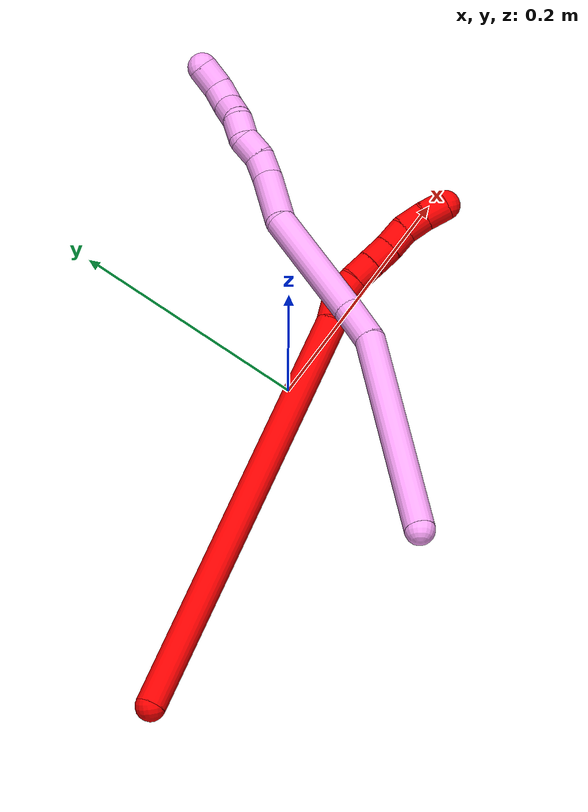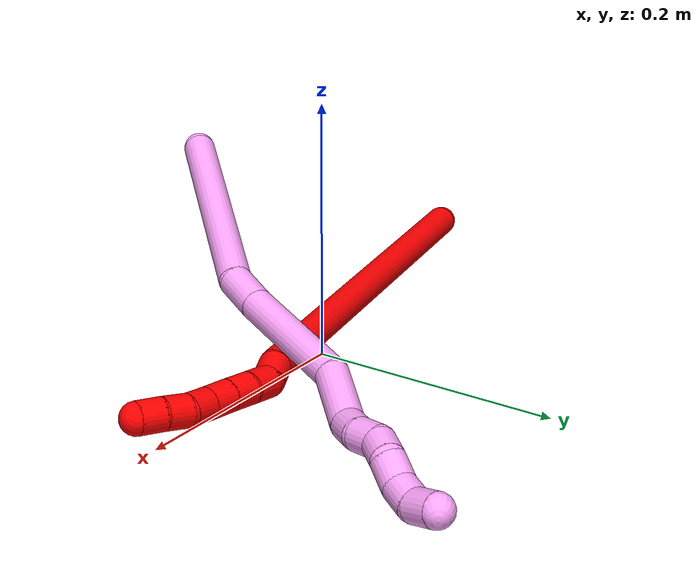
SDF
<sdf version="1.7">
 <world name="default">
  <model name="2">
   <static>0</static>
   <link name="2">
    <collision name="collision-cylinder-e_1_1_4">
     <pose>0.115353 0.046411 -0.127434 -2.79233 0.704811 -2.24697</pose>
     <geometry><cylinder><radius>0.0125</radius><length>0.356088</length></cylinder></geometry>
     <surface>
      <friction><ode><mu>1.16</mu><mu2>1.16</mu2><slip1>0</slip1><slip2>0</slip2></ode></friction>
      <contact><ode><kp>1e+06</kp><kd>1</kd><max_vel>0</max_vel><min_depth>0.001</min_depth></ode></contact>
     </surface>
    </collision>
    <visual name="visual-cylinder-e_1_1_4">
     <pose>0.115353 0.046411 -0.127434 -2.79233 0.704811 -2.24697</pose>
     <geometry><cylinder><radius>0.0125</radius><length>0.356088</length></cylinder></geometry>
     <material><ambient>1 0 0 1</ambient></material>
    </visual>
    <collision name="collision-cylinder-e_2_4_5">
     <pose>0.238565 0.092941 -0.262426 -3.12573 0.804891 -3.10433</pose>
     <geometry><cylinder><radius>0.0125</radius><length>0.021809</length></cylinder></geometry>
     <surface>
      <friction><ode><mu>1.16</mu><mu2>1.16</mu2><slip1>0</slip1><slip2>0</slip2></ode></friction>
      <contact><ode><kp>1e+06</kp><kd>1</kd><max_vel>0</max_vel><min_depth>0.001</min_depth></ode></contact>
     </surface>
    </collision>
    <visual name="visual-cylinder-e_2_4_5">
     <pose>0.238565 0.092941 -0.262426 -3.12573 0.804891 -3.10433</pose>
     <geometry><cylinder><radius>0.0125</radius><length>0.021809</length></cylinder></geometry>
     <material><ambient>1 0 0 1</ambient></material>
    </visual>
    <collision name="collision-cylinder-e_3_5_6">
     <pose>0.252915 0.098628 -0.27688 -2.46242 0.632113 -1.49366</pose>
     <geometry><cylinder><radius>0.0125</radius><length>0.021972</length></cylinder></geometry>
     <surface>
      <friction><ode><mu>1.16</mu><mu2>1.16</mu2><slip1>0</slip1><slip2>0</slip2></ode></friction>
      <contact><ode><kp>1e+06</kp><kd>1</kd><max_vel>0</max_vel><min_depth>0.001</min_depth></ode></contact>
     </surface>
    </collision>
    <visual name="visual-cylinder-e_3_5_6">
     <pose>0.252915 0.098628 -0.27688 -2.46242 0.632113 -1.49366</pose>
     <geometry><cylinder><radius>0.0125</radius><length>0.021972</length></cylinder></geometry>
     <material><ambient>1 0 0 1</ambient></material>
    </visual>
    <collision name="collision-cylinder-e_4_6_7">
     <pose>0.265882 0.110006 -0.288796 -2.28333 0.700676 -1.34776</pose>
     <geometry><cylinder><radius>0.0125</radius><length>0.020088</length></cylinder></geometry>
     <surface>
      <friction><ode><mu>1.16</mu><mu2>1.16</mu2><slip1>0</slip1><slip2>0</slip2></ode></friction>
      <contact><ode><kp>1e+06</kp><kd>1</kd><max_vel>0</max_vel><min_depth>0.001</min_depth></ode></contact>
     </surface>
    </collision>
    <visual name="visual-cylinder-e_4_6_7">
     <pose>0.265882 0.110006 -0.288796 -2.28333 0.700676 -1.34776</pose>
     <geometry><cylinder><radius>0.0125</radius><length>0.020088</length></cylinder></geometry>
     <material><ambient>1 0 0 1</ambient></material>
    </visual>
    <collision name="collision-cylinder-e_5_7_8">
     <pose>0.278965 0.12144 -0.298786 -2.2946 0.721708 -1.394</pose>
     <geometry><cylinder><radius>0.0125</radius><length>0.02</length></cylinder></geometry>
     <surface>
      <friction><ode><mu>1.16</mu><mu2>1.16</mu2><slip1>0</slip1><slip2>0</slip2></ode></friction>
      <contact><ode><kp>1e+06</kp><kd>1</kd><max_vel>0</max_vel><min_depth>0.001</min_depth></ode></contact>
     </surface>
    </collision>
    <visual name="visual-cylinder-e_5_7_8">
     <pose>0.278965 0.12144 -0.298786 -2.2946 0.721708 -1.394</pose>
     <geometry><cylinder><radius>0.0125</radius><length>0.02</length></cylinder></geometry>
     <material><ambient>1 0 0 1</ambient></material>
    </visual>
    <collision name="collision-cylinder-e_6_8_9">
     <pose>0.291556 0.132373 -0.309765 -2.41795 0.641329 -1.44052</pose>
     <geometry><cylinder><radius>0.0125</radius><length>0.020008</length></cylinder></geometry>
     <surface>
      <friction><ode><mu>1.16</mu><mu2>1.16</mu2><slip1>0</slip1><slip2>0</slip2></ode></friction>
      <contact><ode><kp>1e+06</kp><kd>1</kd><max_vel>0</max_vel><min_depth>0.001</min_depth></ode></contact>
     </surface>
    </collision>
    <visual name="visual-cylinder-e_6_8_9">
     <pose>0.291556 0.132373 -0.309765 -2.41795 0.641329 -1.44052</pose>
     <geometry><cylinder><radius>0.0125</radius><length>0.020008</length></cylinder></geometry>
     <material><ambient>1 0 0 1</ambient></material>
    </visual>
    <collision name="collision-cylinder-e_7_9_10">
     <pose>0.302867 0.145053 -0.319931 -2.08435 0.561614 -0.917397</pose>
     <geometry><cylinder><radius>0.0125</radius><length>0.020002</length></cylinder></geometry>
     <surface>
      <friction><ode><mu>1.16</mu><mu2>1.16</mu2><slip1>0</slip1><slip2>0</slip2></ode></friction>
      <contact><ode><kp>1e+06</kp><kd>1</kd><max_vel>0</max_vel><min_depth>0.001</min_depth></ode></contact>
     </surface>
    </collision>
    <visual name="visual-cylinder-e_7_9_10">
     <pose>0.302867 0.145053 -0.319931 -2.08435 0.561614 -0.917397</pose>
     <geometry><cylinder><radius>0.0125</radius><length>0.020002</length></cylinder></geometry>
     <material><ambient>1 0 0 1</ambient></material>
    </visual>
    <collision name="collision-cylinder-e_8_10_2">
     <pose>0.313961 0.159994 -0.327219 -1.96296 0.613619 -0.885051</pose>
     <geometry><cylinder><radius>0.0125</radius><length>0.020034</length></cylinder></geometry>
     <surface>
      <friction><ode><mu>1.16</mu><mu2>1.16</mu2><slip1>0</slip1><slip2>0</slip2></ode></friction>
      <contact><ode><kp>1e+06</kp><kd>1</kd><max_vel>0</max_vel><min_depth>0.001</min_depth></ode></contact>
     </surface>
    </collision>
    <visual name="visual-cylinder-e_8_10_2">
     <pose>0.313961 0.159994 -0.327219 -1.96296 0.613619 -0.885051</pose>
     <geometry><cylinder><radius>0.0125</radius><length>0.020034</length></cylinder></geometry>
     <material><ambient>1 0 0 1</ambient></material>
    </visual>
    <collision name="collision-sphere-2">
     <pose>0.319729 0.167562 -0.330349 0 -0 0</pose>
     <geometry><sphere><radius>0.0125</radius></sphere></geometry>
     <surface>
      <friction><ode><mu>1.16</mu><mu2>1.16</mu2><slip1>0</slip1><slip2>0</slip2></ode></friction>
      <contact><ode><kp>1e+06</kp><kd>1</kd><max_vel>0</max_vel><min_depth>0.001</min_depth></ode></contact>
     </surface>
    </collision>
    <visual name="visual-sphere-2">
     <pose>0.319729 0.167562 -0.330349 0 -0 0</pose>
     <geometry><sphere><radius>0.0125</radius></sphere></geometry>
     <material><ambient>1 0 0 1</ambient></material>
    </visual>
    <collision name="collision-sphere-10">
     <pose>0.308193 0.152426 -0.324089 0 -0 0</pose>
     <geometry><sphere><radius>0.0125</radius></sphere></geometry>
     <surface>
      <friction><ode><mu>1.16</mu><mu2>1.16</mu2><slip1>0</slip1><slip2>0</slip2></ode></friction>
      <contact><ode><kp>1e+06</kp><kd>1</kd><max_vel>0</max_vel><min_depth>0.001</min_depth></ode></contact>
     </surface>
    </collision>
    <visual name="visual-sphere-10">
     <pose>0.308193 0.152426 -0.324089 0 -0 0</pose>
     <geometry><sphere><radius>0.0125</radius></sphere></geometry>
     <material><ambient>1 0 0 1</ambient></material>
    </visual>
    <collision name="collision-sphere-9">
     <pose>0.297541 0.13768 -0.315772 0 -0 0</pose>
     <geometry><sphere><radius>0.0125</radius></sphere></geometry>
     <surface>
      <friction><ode><mu>1.16</mu><mu2>1.16</mu2><slip1>0</slip1><slip2>0</slip2></ode></friction>
      <contact><ode><kp>1e+06</kp><kd>1</kd><max_vel>0</max_vel><min_depth>0.001</min_depth></ode></contact>
     </surface>
    </collision>
    <visual name="visual-sphere-9">
     <pose>0.297541 0.13768 -0.315772 0 -0 0</pose>
     <geometry><sphere><radius>0.0125</radius></sphere></geometry>
     <material><ambient>1 0 0 1</ambient></material>
    </visual>
    <collision name="collision-sphere-4">
     <pose>0.230706 0.092821 -0.254868 0 -0 0</pose>
     <geometry><sphere><radius>0.0125</radius></sphere></geometry>
     <surface>
      <friction><ode><mu>1.16</mu><mu2>1.16</mu2><slip1>0</slip1><slip2>0</slip2></ode></friction>
      <contact><ode><kp>1e+06</kp><kd>1</kd><max_vel>0</max_vel><min_depth>0.001</min_depth></ode></contact>
     </surface>
    </collision>
    <visual name="visual-sphere-4">
     <pose>0.230706 0.092821 -0.254868 0 -0 0</pose>
     <geometry><sphere><radius>0.0125</radius></sphere></geometry>
     <material><ambient>1 0 0 1</ambient></material>
    </visual>
    <collision name="collision-sphere-1">
     <geometry><sphere><radius>0.0125</radius></sphere></geometry>
     <surface>
      <friction><ode><mu>1.16</mu><mu2>1.16</mu2><slip1>0</slip1><slip2>0</slip2></ode></friction>
      <contact><ode><kp>1e+06</kp><kd>1</kd><max_vel>0</max_vel><min_depth>0.001</min_depth></ode></contact>
     </surface>
    </collision>
    <visual name="visual-sphere-1">
     <geometry><sphere><radius>0.0125</radius></sphere></geometry>
     <material><ambient>1 0 0 1</ambient></material>
    </visual>
    <collision name="collision-sphere-8">
     <pose>0.285572 0.127065 -0.303758 0 -0 0</pose>
     <geometry><sphere><radius>0.0125</radius></sphere></geometry>
     <surface>
      <friction><ode><mu>1.16</mu><mu2>1.16</mu2><slip1>0</slip1><slip2>0</slip2></ode></friction>
      <contact><ode><kp>1e+06</kp><kd>1</kd><max_vel>0</max_vel><min_depth>0.001</min_depth></ode></contact>
     </surface>
    </collision>
    <visual name="visual-sphere-8">
     <pose>0.285572 0.127065 -0.303758 0 -0 0</pose>
     <geometry><sphere><radius>0.0125</radius></sphere></geometry>
     <material><ambient>1 0 0 1</ambient></material>
    </visual>
    <collision name="collision-sphere-5">
     <pose>0.246424 0.093061 -0.269983 0 -0 0</pose>
     <geometry><sphere><radius>0.0125</radius></sphere></geometry>
     <surface>
      <friction><ode><mu>1.16</mu><mu2>1.16</mu2><slip1>0</slip1><slip2>0</slip2></ode></friction>
      <contact><ode><kp>1e+06</kp><kd>1</kd><max_vel>0</max_vel><min_depth>0.001</min_depth></ode></contact>
     </surface>
    </collision>
    <visual name="visual-sphere-5">
     <pose>0.246424 0.093061 -0.269983 0 -0 0</pose>
     <geometry><sphere><radius>0.0125</radius></sphere></geometry>
     <material><ambient>1 0 0 1</ambient></material>
    </visual>
    <collision name="collision-sphere-6">
     <pose>0.259407 0.104196 -0.283776 0 -0 0</pose>
     <geometry><sphere><radius>0.0125</radius></sphere></geometry>
     <surface>
      <friction><ode><mu>1.16</mu><mu2>1.16</mu2><slip1>0</slip1><slip2>0</slip2></ode></friction>
      <contact><ode><kp>1e+06</kp><kd>1</kd><max_vel>0</max_vel><min_depth>0.001</min_depth></ode></contact>
     </surface>
    </collision>
    <visual name="visual-sphere-6">
     <pose>0.259407 0.104196 -0.283776 0 -0 0</pose>
     <geometry><sphere><radius>0.0125</radius></sphere></geometry>
     <material><ambient>1 0 0 1</ambient></material>
    </visual>
    <collision name="collision-sphere-7">
     <pose>0.272358 0.115816 -0.293815 0 -0 0</pose>
     <geometry><sphere><radius>0.0125</radius></sphere></geometry>
     <surface>
      <friction><ode><mu>1.16</mu><mu2>1.16</mu2><slip1>0</slip1><slip2>0</slip2></ode></friction>
      <contact><ode><kp>1e+06</kp><kd>1</kd><max_vel>0</max_vel><min_depth>0.001</min_depth></ode></contact>
     </surface>
    </collision>
    <visual name="visual-sphere-7">
     <pose>0.272358 0.115816 -0.293815 0 -0 0</pose>
     <geometry><sphere><radius>0.0125</radius></sphere></geometry>
     <material><ambient>1 0 0 1</ambient></material>
    </visual>
    <inertial>
     <pose>0.161874 0.068228 -0.176228 0 -0 0</pose>
     <mass>0.5</mass>
     <inertia>
      <ixx>-0.004025</ixx>
      <ixy>0</ixy>
      <ixz>0</ixz>
      <iyy>0.000641</iyy>
      <iyz>0</iyz>
      <izz>-0.003469</izz>
     </inertia>
    </inertial>
   </link>
   <pose>-0.284846 -0.068002 0.011499 2.46892 0.829462 -0.045336</pose>
  </model>
  <model name="4">
   <static>0</static>
   <link name="4">
    <collision name="collision-cylinder-e_1_1_4">
     <pose>0.008501 0.02004 -0.091795 -2.92665 0.090231 -0.79264</pose>
     <geometry><cylinder><radius>0.0125</radius><length>0.188682</length></cylinder></geometry>
     <surface>
      <friction><ode><mu>1.16</mu><mu2>1.16</mu2><slip1>0</slip1><slip2>0</slip2></ode></friction>
      <contact><ode><kp>1e+06</kp><kd>1</kd><max_vel>0</max_vel><min_depth>0.001</min_depth></ode></contact>
     </surface>
    </collision>
    <visual name="visual-cylinder-e_1_1_4">
     <pose>0.008501 0.02004 -0.091795 -2.92665 0.090231 -0.79264</pose>
     <geometry><cylinder><radius>0.0125</radius><length>0.188682</length></cylinder></geometry>
     <material><ambient>1 0.65098 0.996078 1</ambient></material>
    </visual>
    <collision name="collision-cylinder-e_2_4_5">
     <pose>0.023395 0.045747 -0.198665 -2.78203 0.377895 -1.62164</pose>
     <geometry><cylinder><radius>0.0125</radius><length>0.034656</length></cylinder></geometry>
     <surface>
      <friction><ode><mu>1.16</mu><mu2>1.16</mu2><slip1>0</slip1><slip2>0</slip2></ode></friction>
      <contact><ode><kp>1e+06</kp><kd>1</kd><max_vel>0</max_vel><min_depth>0.001</min_depth></ode></contact>
     </surface>
    </collision>
    <visual name="visual-cylinder-e_2_4_5">
     <pose>0.023395 0.045747 -0.198665 -2.78203 0.377895 -1.62164</pose>
     <geometry><cylinder><radius>0.0125</radius><length>0.034656</length></cylinder></geometry>
     <material><ambient>1 0.65098 0.996078 1</ambient></material>
    </visual>
    <collision name="collision-cylinder-e_3_5_6">
     <pose>0.051781 0.0667 -0.257427 -2.805 0.443593 -1.8502</pose>
     <geometry><cylinder><radius>0.0125</radius><length>0.102486</length></cylinder></geometry>
     <surface>
      <friction><ode><mu>1.16</mu><mu2>1.16</mu2><slip1>0</slip1><slip2>0</slip2></ode></friction>
      <contact><ode><kp>1e+06</kp><kd>1</kd><max_vel>0</max_vel><min_depth>0.001</min_depth></ode></contact>
     </surface>
    </collision>
    <visual name="visual-cylinder-e_3_5_6">
     <pose>0.051781 0.0667 -0.257427 -2.805 0.443593 -1.8502</pose>
     <geometry><cylinder><radius>0.0125</radius><length>0.102486</length></cylinder></geometry>
     <material><ambient>1 0.65098 0.996078 1</ambient></material>
    </visual>
    <collision name="collision-cylinder-e_4_6_7">
     <pose>0.075542 0.089309 -0.32483 -2.84215 0.07112 -0.4632</pose>
     <geometry><cylinder><radius>0.0125</radius><length>0.04977</length></cylinder></geometry>
     <surface>
      <friction><ode><mu>1.16</mu><mu2>1.16</mu2><slip1>0</slip1><slip2>0</slip2></ode></friction>
      <contact><ode><kp>1e+06</kp><kd>1</kd><max_vel>0</max_vel><min_depth>0.001</min_depth></ode></contact>
     </surface>
    </collision>
    <visual name="visual-cylinder-e_4_6_7">
     <pose>0.075542 0.089309 -0.32483 -2.84215 0.07112 -0.4632</pose>
     <geometry><cylinder><radius>0.0125</radius><length>0.04977</length></cylinder></geometry>
     <material><ambient>1 0.65098 0.996078 1</ambient></material>
    </visual>
    <collision name="collision-cylinder-e_5_7_8">
     <pose>0.08106 0.096518 -0.357946 3.12958 0.379579 3.07907</pose>
     <geometry><cylinder><radius>0.0125</radius><length>0.020238</length></cylinder></geometry>
     <surface>
      <friction><ode><mu>1.16</mu><mu2>1.16</mu2><slip1>0</slip1><slip2>0</slip2></ode></friction>
      <contact><ode><kp>1e+06</kp><kd>1</kd><max_vel>0</max_vel><min_depth>0.001</min_depth></ode></contact>
     </surface>
    </collision>
    <visual name="visual-cylinder-e_5_7_8">
     <pose>0.08106 0.096518 -0.357946 3.12958 0.379579 3.07907</pose>
     <geometry><cylinder><radius>0.0125</radius><length>0.020238</length></cylinder></geometry>
     <material><ambient>1 0.65098 0.996078 1</ambient></material>
    </visual>
    <collision name="collision-cylinder-e_6_8_9">
     <pose>0.09116 0.097666 -0.374997 -2.9783 0.686077 -2.69115</pose>
     <geometry><cylinder><radius>0.0125</radius><length>0.020049</length></cylinder></geometry>
     <surface>
      <friction><ode><mu>1.16</mu><mu2>1.16</mu2><slip1>0</slip1><slip2>0</slip2></ode></friction>
      <contact><ode><kp>1e+06</kp><kd>1</kd><max_vel>0</max_vel><min_depth>0.001</min_depth></ode></contact>
     </surface>
    </collision>
    <visual name="visual-cylinder-e_6_8_9">
     <pose>0.09116 0.097666 -0.374997 -2.9783 0.686077 -2.69115</pose>
     <geometry><cylinder><radius>0.0125</radius><length>0.020049</length></cylinder></geometry>
     <material><ambient>1 0.65098 0.996078 1</ambient></material>
    </visual>
    <collision name="collision-cylinder-e_7_9_10">
     <pose>0.099588 0.100325 -0.392359 -2.9986 0.208702 -1.942</pose>
     <geometry><cylinder><radius>0.0125</radius><length>0.020053</length></cylinder></geometry>
     <surface>
      <friction><ode><mu>1.16</mu><mu2>1.16</mu2><slip1>0</slip1><slip2>0</slip2></ode></friction>
      <contact><ode><kp>1e+06</kp><kd>1</kd><max_vel>0</max_vel><min_depth>0.001</min_depth></ode></contact>
     </surface>
    </collision>
    <visual name="visual-cylinder-e_7_9_10">
     <pose>0.099588 0.100325 -0.392359 -2.9986 0.208702 -1.942</pose>
     <geometry><cylinder><radius>0.0125</radius><length>0.020053</length></cylinder></geometry>
     <material><ambient>1 0.65098 0.996078 1</ambient></material>
    </visual>
    <collision name="collision-cylinder-e_8_10_11">
     <pose>0.102718 0.107398 -0.411025 -2.57677 0.098925 -0.33795</pose>
     <geometry><cylinder><radius>0.0125</radius><length>0.021313</length></cylinder></geometry>
     <surface>
      <friction><ode><mu>1.16</mu><mu2>1.16</mu2><slip1>0</slip1><slip2>0</slip2></ode></friction>
      <contact><ode><kp>1e+06</kp><kd>1</kd><max_vel>0</max_vel><min_depth>0.001</min_depth></ode></contact>
     </surface>
    </collision>
    <visual name="visual-cylinder-e_8_10_11">
     <pose>0.102718 0.107398 -0.411025 -2.57677 0.098925 -0.33795</pose>
     <geometry><cylinder><radius>0.0125</radius><length>0.021313</length></cylinder></geometry>
     <material><ambient>1 0.65098 0.996078 1</ambient></material>
    </visual>
    <collision name="collision-cylinder-e_9_11_12">
     <pose>0.107198 0.115623 -0.429621 -2.88312 0.33112 -1.81948</pose>
     <geometry><cylinder><radius>0.0125</radius><length>0.021085</length></cylinder></geometry>
     <surface>
      <friction><ode><mu>1.16</mu><mu2>1.16</mu2><slip1>0</slip1><slip2>0</slip2></ode></friction>
      <contact><ode><kp>1e+06</kp><kd>1</kd><max_vel>0</max_vel><min_depth>0.001</min_depth></ode></contact>
     </surface>
    </collision>
    <visual name="visual-cylinder-e_9_11_12">
     <pose>0.107198 0.115623 -0.429621 -2.88312 0.33112 -1.81948</pose>
     <geometry><cylinder><radius>0.0125</radius><length>0.021085</length></cylinder></geometry>
     <material><ambient>1 0.65098 0.996078 1</ambient></material>
    </visual>
    <collision name="collision-cylinder-e_10_12_2">
     <pose>0.117946 0.117917 -0.447243 3.10972 0.741883 3.05968</pose>
     <geometry><cylinder><radius>0.0125</radius><length>0.021669</length></cylinder></geometry>
     <surface>
      <friction><ode><mu>1.16</mu><mu2>1.16</mu2><slip1>0</slip1><slip2>0</slip2></ode></friction>
      <contact><ode><kp>1e+06</kp><kd>1</kd><max_vel>0</max_vel><min_depth>0.001</min_depth></ode></contact>
     </surface>
    </collision>
    <visual name="visual-cylinder-e_10_12_2">
     <pose>0.117946 0.117917 -0.447243 3.10972 0.741883 3.05968</pose>
     <geometry><cylinder><radius>0.0125</radius><length>0.021669</length></cylinder></geometry>
     <material><ambient>1 0.65098 0.996078 1</ambient></material>
    </visual>
    <collision name="collision-sphere-2">
     <pose>0.125267 0.117662 -0.455226 0 -0 0</pose>
     <geometry><sphere><radius>0.0125</radius></sphere></geometry>
     <surface>
      <friction><ode><mu>1.16</mu><mu2>1.16</mu2><slip1>0</slip1><slip2>0</slip2></ode></friction>
      <contact><ode><kp>1e+06</kp><kd>1</kd><max_vel>0</max_vel><min_depth>0.001</min_depth></ode></contact>
     </surface>
    </collision>
    <visual name="visual-sphere-2">
     <pose>0.125267 0.117662 -0.455226 0 -0 0</pose>
     <geometry><sphere><radius>0.0125</radius></sphere></geometry>
     <material><ambient>1 0.65098 0.996078 1</ambient></material>
    </visual>
    <collision name="collision-sphere-12">
     <pose>0.110625 0.118171 -0.43926 0 -0 0</pose>
     <geometry><sphere><radius>0.0125</radius></sphere></geometry>
     <surface>
      <friction><ode><mu>1.16</mu><mu2>1.16</mu2><slip1>0</slip1><slip2>0</slip2></ode></friction>
      <contact><ode><kp>1e+06</kp><kd>1</kd><max_vel>0</max_vel><min_depth>0.001</min_depth></ode></contact>
     </surface>
    </collision>
    <visual name="visual-sphere-12">
     <pose>0.110625 0.118171 -0.43926 0 -0 0</pose>
     <geometry><sphere><radius>0.0125</radius></sphere></geometry>
     <material><ambient>1 0.65098 0.996078 1</ambient></material>
    </visual>
    <collision name="collision-sphere-11">
     <pose>0.10377 0.113075 -0.419982 0 -0 0</pose>
     <geometry><sphere><radius>0.0125</radius></sphere></geometry>
     <surface>
      <friction><ode><mu>1.16</mu><mu2>1.16</mu2><slip1>0</slip1><slip2>0</slip2></ode></friction>
      <contact><ode><kp>1e+06</kp><kd>1</kd><max_vel>0</max_vel><min_depth>0.001</min_depth></ode></contact>
     </surface>
    </collision>
    <visual name="visual-sphere-11">
     <pose>0.10377 0.113075 -0.419982 0 -0 0</pose>
     <geometry><sphere><radius>0.0125</radius></sphere></geometry>
     <material><ambient>1 0.65098 0.996078 1</ambient></material>
    </visual>
    <collision name="collision-sphere-10">
     <pose>0.101665 0.101722 -0.402067 0 -0 0</pose>
     <geometry><sphere><radius>0.0125</radius></sphere></geometry>
     <surface>
      <friction><ode><mu>1.16</mu><mu2>1.16</mu2><slip1>0</slip1><slip2>0</slip2></ode></friction>
      <contact><ode><kp>1e+06</kp><kd>1</kd><max_vel>0</max_vel><min_depth>0.001</min_depth></ode></contact>
     </surface>
    </collision>
    <visual name="visual-sphere-10">
     <pose>0.101665 0.101722 -0.402067 0 -0 0</pose>
     <geometry><sphere><radius>0.0125</radius></sphere></geometry>
     <material><ambient>1 0.65098 0.996078 1</ambient></material>
    </visual>
    <collision name="collision-sphere-9">
     <pose>0.097511 0.098927 -0.38265 0 -0 0</pose>
     <geometry><sphere><radius>0.0125</radius></sphere></geometry>
     <surface>
      <friction><ode><mu>1.16</mu><mu2>1.16</mu2><slip1>0</slip1><slip2>0</slip2></ode></friction>
      <contact><ode><kp>1e+06</kp><kd>1</kd><max_vel>0</max_vel><min_depth>0.001</min_depth></ode></contact>
     </surface>
    </collision>
    <visual name="visual-sphere-9">
     <pose>0.097511 0.098927 -0.38265 0 -0 0</pose>
     <geometry><sphere><radius>0.0125</radius></sphere></geometry>
     <material><ambient>1 0.65098 0.996078 1</ambient></material>
    </visual>
    <collision name="collision-sphere-4">
     <pose>0.017002 0.04008 -0.18359 0 -0 0</pose>
     <geometry><sphere><radius>0.0125</radius></sphere></geometry>
     <surface>
      <friction><ode><mu>1.16</mu><mu2>1.16</mu2><slip1>0</slip1><slip2>0</slip2></ode></friction>
      <contact><ode><kp>1e+06</kp><kd>1</kd><max_vel>0</max_vel><min_depth>0.001</min_depth></ode></contact>
     </surface>
    </collision>
    <visual name="visual-sphere-4">
     <pose>0.017002 0.04008 -0.18359 0 -0 0</pose>
     <geometry><sphere><radius>0.0125</radius></sphere></geometry>
     <material><ambient>1 0.65098 0.996078 1</ambient></material>
    </visual>
    <collision name="collision-sphere-1">
     <geometry><sphere><radius>0.0125</radius></sphere></geometry>
     <surface>
      <friction><ode><mu>1.16</mu><mu2>1.16</mu2><slip1>0</slip1><slip2>0</slip2></ode></friction>
      <contact><ode><kp>1e+06</kp><kd>1</kd><max_vel>0</max_vel><min_depth>0.001</min_depth></ode></contact>
     </surface>
    </collision>
    <visual name="visual-sphere-1">
     <geometry><sphere><radius>0.0125</radius></sphere></geometry>
     <material><ambient>1 0.65098 0.996078 1</ambient></material>
    </visual>
    <collision name="collision-sphere-8">
     <pose>0.08481 0.096405 -0.367344 0 -0 0</pose>
     <geometry><sphere><radius>0.0125</radius></sphere></geometry>
     <surface>
      <friction><ode><mu>1.16</mu><mu2>1.16</mu2><slip1>0</slip1><slip2>0</slip2></ode></friction>
      <contact><ode><kp>1e+06</kp><kd>1</kd><max_vel>0</max_vel><min_depth>0.001</min_depth></ode></contact>
     </surface>
    </collision>
    <visual name="visual-sphere-8">
     <pose>0.08481 0.096405 -0.367344 0 -0 0</pose>
     <geometry><sphere><radius>0.0125</radius></sphere></geometry>
     <material><ambient>1 0.65098 0.996078 1</ambient></material>
    </visual>
    <collision name="collision-sphere-5">
     <pose>0.029789 0.051414 -0.213741 0 -0 0</pose>
     <geometry><sphere><radius>0.0125</radius></sphere></geometry>
     <surface>
      <friction><ode><mu>1.16</mu><mu2>1.16</mu2><slip1>0</slip1><slip2>0</slip2></ode></friction>
      <contact><ode><kp>1e+06</kp><kd>1</kd><max_vel>0</max_vel><min_depth>0.001</min_depth></ode></contact>
     </surface>
    </collision>
    <visual name="visual-sphere-5">
     <pose>0.029789 0.051414 -0.213741 0 -0 0</pose>
     <geometry><sphere><radius>0.0125</radius></sphere></geometry>
     <material><ambient>1 0.65098 0.996078 1</ambient></material>
    </visual>
    <collision name="collision-sphere-6">
     <pose>0.073774 0.081986 -0.301113 0 -0 0</pose>
     <geometry><sphere><radius>0.0125</radius></sphere></geometry>
     <surface>
      <friction><ode><mu>1.16</mu><mu2>1.16</mu2><slip1>0</slip1><slip2>0</slip2></ode></friction>
      <contact><ode><kp>1e+06</kp><kd>1</kd><max_vel>0</max_vel><min_depth>0.001</min_depth></ode></contact>
     </surface>
    </collision>
    <visual name="visual-sphere-6">
     <pose>0.073774 0.081986 -0.301113 0 -0 0</pose>
     <geometry><sphere><radius>0.0125</radius></sphere></geometry>
     <material><ambient>1 0.65098 0.996078 1</ambient></material>
    </visual>
    <collision name="collision-sphere-7">
     <pose>0.077311 0.096631 -0.348548 0 -0 0</pose>
     <geometry><sphere><radius>0.0125</radius></sphere></geometry>
     <surface>
      <friction><ode><mu>1.16</mu><mu2>1.16</mu2><slip1>0</slip1><slip2>0</slip2></ode></friction>
      <contact><ode><kp>1e+06</kp><kd>1</kd><max_vel>0</max_vel><min_depth>0.001</min_depth></ode></contact>
     </surface>
    </collision>
    <visual name="visual-sphere-7">
     <pose>0.077311 0.096631 -0.348548 0 -0 0</pose>
     <geometry><sphere><radius>0.0125</radius></sphere></geometry>
     <material><ambient>1 0.65098 0.996078 1</ambient></material>
    </visual>
    <inertial>
     <pose>0.047904 0.059705 -0.23379 0 -0 0</pose>
     <mass>0.5</mass>
     <inertia>
      <ixx>-0.000107</ixx>
      <ixy>0</ixy>
      <ixz>0</ixz>
      <iyy>-0.000837</iyy>
      <iyz>0</iyz>
      <izz>-0.000288</izz>
     </inertia>
    </inertial>
   </link>
   <pose>-0.073614 -0.176537 0.115591 -1.45192 -0.457717 2.15213</pose>
  </model>
 </world>
</sdf>
